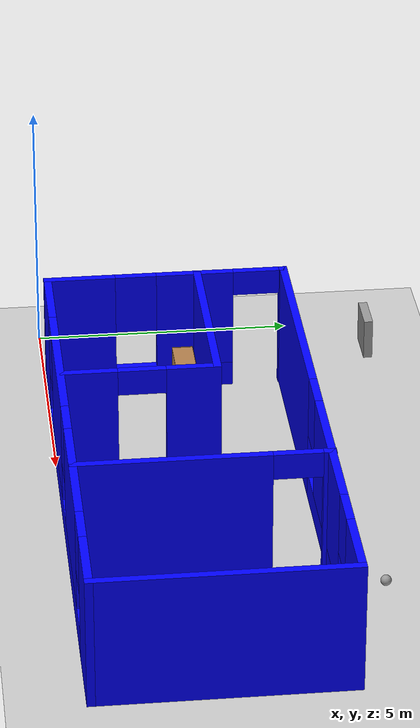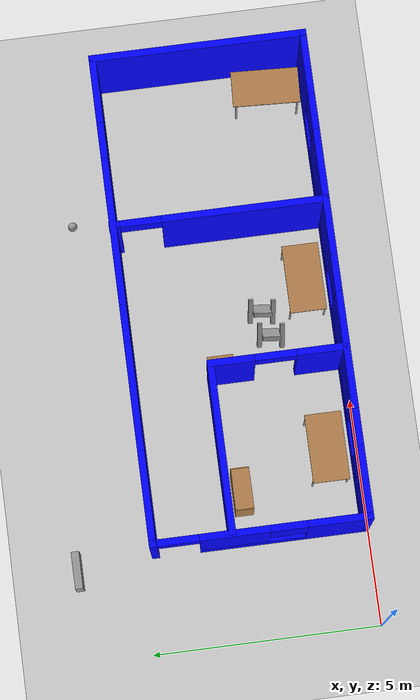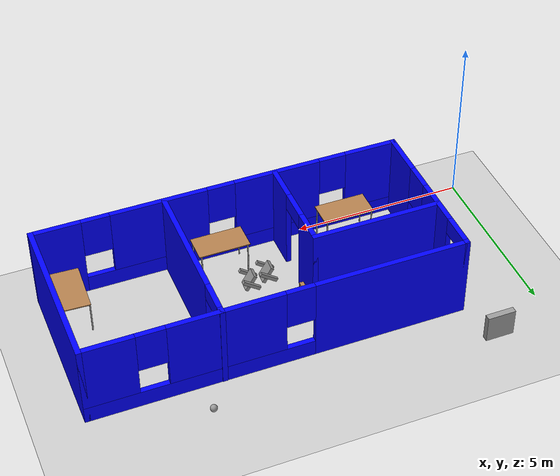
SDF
<sdf version="1.6">
 <world name="default">
  <plugin name="hello" filename="libhello.so"/>
  <light name="sun" type="directional">
   <pose>0 0 10 0 -0 0</pose>
   <diffuse>0.8 0.8 0.8 1</diffuse>
   <specular>0.2 0.2 0.2 1</specular>
   <attenuation>
    <range>1000</range>
    <constant>0.9</constant>
    <linear>0.01</linear>
    <quadratic>0.001</quadratic>
   </attenuation>
   <direction>-0.5 0.1 -0.9</direction>
  </light>
  <model name="ground_plane">
   <static>1</static>
   <link name="link">
    <collision name="collision">
     <geometry><plane><normal>0 0 1</normal><size>100 100</size></plane></geometry>
     <surface>
      <contact><collide_bitmask>65535</collide_bitmask></contact>
      <friction><ode><mu>100</mu><mu2>50</mu2></ode></friction>
     </surface>
    </collision>
    <visual name="visual">
     <cast_shadows>0</cast_shadows>
     <geometry><plane><normal>0 0 1</normal><size>100 100</size></plane></geometry>
     <material>
      <script><uri>file://media/materials/scripts/gazebo.material</uri><name>Gazebo/Grey</name></script>
     </material>
    </visual>
   </link>
  </model>
  <gravity>0 0 -9.8</gravity>
  <magnetic_field>6e-06 2.3e-05 -4.2e-05</magnetic_field>
  <atmosphere type="adiabatic"/>
  <physics name="default_physics" default="0" type="ode">
   <max_step_size>0.001</max_step_size>
   <real_time_factor>1</real_time_factor>
   <real_time_update_rate>1000</real_time_update_rate>
  </physics>
  <scene><ambient>0.4 0.4 0.4 1</ambient><background>0.7 0.7 0.7 1</background><shadows>1</shadows></scene>
  <spherical_coordinates>
   <surface_model>EARTH_WGS84</surface_model>
   <latitude_deg>0</latitude_deg>
   <longitude_deg>0</longitude_deg>
   <elevation>0</elevation>
   <heading_deg>0</heading_deg>
  </spherical_coordinates>
  <model name="building">
   <pose>7.4627 2.38493 0 0 -0 0</pose>
   <link name="Wall_10">
    <collision name="Wall_10_Collision">
     <geometry><box><size>4.75 0.15 2.5</size></box></geometry>
     <pose>0 0 1.25 0 -0 0</pose>
    </collision>
    <visual name="Wall_10_Visual">
     <pose>0 0 1.25 0 -0 0</pose>
     <geometry><box><size>4.75 0.15 2.5</size></box></geometry>
     <material>
      <script><uri>file://media/materials/scripts/gazebo.material</uri><name>Gazebo/Grey</name></script>
      <ambient>0 0 1 1</ambient>
     </material>
     <meta><layer>0</layer></meta>
    </visual>
    <pose>5.3 -0.005 0 0 0 -1.5708</pose>
   </link>
   <link name="Wall_11">
    <pose>0 -2.305 0 0 -0 3.14159</pose>
    <visual name="Wall_11_Visual_0">
     <pose>-4.6525 0 1.25 0 -0 0</pose>
     <geometry><box><size>1.445 0.15 2.5</size></box></geometry>
     <material>
      <script><uri>file://media/materials/scripts/gazebo.material</uri><name>Gazebo/Grey</name></script>
      <ambient>0 0 1 1</ambient>
     </material>
     <meta><layer>0</layer></meta>
    </visual>
    <collision name="Wall_11_Collision_0">
     <geometry><box><size>1.445 0.15 2.5</size></box></geometry>
     <pose>-4.6525 0 1.25 0 -0 0</pose>
    </collision>
    <visual name="Wall_11_Visual_1">
     <pose>0.7225 0 0.25 0 -0 0</pose>
     <geometry><box><size>9.305 0.15 0.5</size></box></geometry>
     <material>
      <script><uri>file://media/materials/scripts/gazebo.material</uri><name>Gazebo/Grey</name></script>
      <ambient>0 0 1 1</ambient>
     </material>
     <meta><layer>0</layer></meta>
    </visual>
    <collision name="Wall_11_Collision_1">
     <geometry><box><size>9.305 0.15 0.5</size></box></geometry>
     <pose>0.7225 0 0.25 0 -0 0</pose>
    </collision>
    <visual name="Wall_11_Visual_2">
     <pose>-1.735 0 1.5 0 -0 0</pose>
     <geometry><box><size>2.79 0.15 2</size></box></geometry>
     <material>
      <script><uri>file://media/materials/scripts/gazebo.material</uri><name>Gazebo/Grey</name></script>
      <ambient>0 0 1 1</ambient>
     </material>
     <meta><layer>0</layer></meta>
    </visual>
    <collision name="Wall_11_Collision_2">
     <geometry><box><size>2.79 0.15 2</size></box></geometry>
     <pose>-1.735 0 1.5 0 -0 0</pose>
    </collision>
    <visual name="Wall_11_Visual_3">
     <pose>1.73 0 1.5 0 -0 0</pose>
     <geometry><box><size>2.54 0.15 2</size></box></geometry>
     <material>
      <script><uri>file://media/materials/scripts/gazebo.material</uri><name>Gazebo/Grey</name></script>
      <ambient>0 0 1 1</ambient>
     </material>
     <meta><layer>0</layer></meta>
    </visual>
    <collision name="Wall_11_Collision_3">
     <geometry><box><size>2.54 0.15 2</size></box></geometry>
     <pose>1.73 0 1.5 0 -0 0</pose>
    </collision>
    <visual name="Wall_11_Visual_4">
     <pose>4.5875 0 1.5 0 -0 0</pose>
     <geometry><box><size>1.575 0.15 2</size></box></geometry>
     <material>
      <script><uri>file://media/materials/scripts/gazebo.material</uri><name>Gazebo/Grey</name></script>
      <ambient>0 0 1 1</ambient>
     </material>
     <meta><layer>0</layer></meta>
    </visual>
    <collision name="Wall_11_Collision_4">
     <geometry><box><size>1.575 0.15 2</size></box></geometry>
     <pose>4.5875 0 1.5 0 -0 0</pose>
    </collision>
    <visual name="Wall_11_Visual_5">
     <pose>-3.53 0 1.9 0 -0 0</pose>
     <geometry><box><size>0.8 0.15 1.2</size></box></geometry>
     <material>
      <script><uri>file://media/materials/scripts/gazebo.material</uri><name>Gazebo/Grey</name></script>
      <ambient>0 0 1 1</ambient>
     </material>
     <meta><layer>0</layer></meta>
    </visual>
    <collision name="Wall_11_Collision_5">
     <geometry><box><size>0.8 0.15 1.2</size></box></geometry>
     <pose>-3.53 0 1.9 0 -0 0</pose>
    </collision>
    <visual name="Wall_11_Visual_6">
     <pose>0.06 0 1.9 0 -0 0</pose>
     <geometry><box><size>0.8 0.15 1.2</size></box></geometry>
     <material>
      <script><uri>file://media/materials/scripts/gazebo.material</uri><name>Gazebo/Grey</name></script>
      <ambient>0 0 1 1</ambient>
     </material>
     <meta><layer>0</layer></meta>
    </visual>
    <collision name="Wall_11_Collision_6">
     <geometry><box><size>0.8 0.15 1.2</size></box></geometry>
     <pose>0.06 0 1.9 0 -0 0</pose>
    </collision>
    <visual name="Wall_11_Visual_7">
     <pose>3.4 0 1.9 0 -0 0</pose>
     <geometry><box><size>0.8 0.15 1.2</size></box></geometry>
     <material>
      <script><uri>file://media/materials/scripts/gazebo.material</uri><name>Gazebo/Grey</name></script>
      <ambient>0 0 1 1</ambient>
     </material>
     <meta><layer>0</layer></meta>
    </visual>
    <collision name="Wall_11_Collision_7">
     <geometry><box><size>0.8 0.15 1.2</size></box></geometry>
     <pose>3.4 0 1.9 0 -0 0</pose>
    </collision>
   </link>
   <link name="Wall_12">
    <pose>-5.3 -0.005 0 0 -0 1.5708</pose>
    <visual name="Wall_12_Visual_0">
     <pose>-1.6825 0 1.25 0 -0 0</pose>
     <geometry><box><size>1.385 0.15 2.5</size></box></geometry>
     <material>
      <script><uri>file://media/materials/scripts/gazebo.material</uri><name>Gazebo/Grey</name></script>
      <ambient>0 0 1 1</ambient>
     </material>
     <meta><layer>0</layer></meta>
    </visual>
    <collision name="Wall_12_Collision_0">
     <geometry><box><size>1.385 0.15 2.5</size></box></geometry>
     <pose>-1.6825 0 1.25 0 -0 0</pose>
    </collision>
    <visual name="Wall_12_Visual_1">
     <pose>2.2925 0 1.25 0 -0 0</pose>
     <geometry><box><size>0.165 0.15 2.5</size></box></geometry>
     <material>
      <script><uri>file://media/materials/scripts/gazebo.material</uri><name>Gazebo/Grey</name></script>
      <ambient>0 0 1 1</ambient>
     </material>
     <meta><layer>0</layer></meta>
    </visual>
    <collision name="Wall_12_Collision_1">
     <geometry><box><size>0.165 0.15 2.5</size></box></geometry>
     <pose>2.2925 0 1.25 0 -0 0</pose>
    </collision>
    <visual name="Wall_12_Visual_2">
     <pose>0.16 0 0.25 0 -0 0</pose>
     <geometry><box><size>2.3 0.15 0.5</size></box></geometry>
     <material>
      <script><uri>file://media/materials/scripts/gazebo.material</uri><name>Gazebo/Grey</name></script>
      <ambient>0 0 1 1</ambient>
     </material>
     <meta><layer>0</layer></meta>
    </visual>
    <collision name="Wall_12_Collision_2">
     <geometry><box><size>2.3 0.15 0.5</size></box></geometry>
     <pose>0.16 0 0.25 0 -0 0</pose>
    </collision>
    <visual name="Wall_12_Visual_3">
     <pose>0.56 0 1.5 0 -0 0</pose>
     <geometry><box><size>1.5 0.15 2</size></box></geometry>
     <material>
      <script><uri>file://media/materials/scripts/gazebo.material</uri><name>Gazebo/Grey</name></script>
      <ambient>0 0 1 1</ambient>
     </material>
     <meta><layer>0</layer></meta>
    </visual>
    <collision name="Wall_12_Collision_3">
     <geometry><box><size>1.5 0.15 2</size></box></geometry>
     <pose>0.56 0 1.5 0 -0 0</pose>
    </collision>
    <visual name="Wall_12_Visual_4">
     <pose>-0.59 0 1.9 0 -0 0</pose>
     <geometry><box><size>0.8 0.15 1.2</size></box></geometry>
     <material>
      <script><uri>file://media/materials/scripts/gazebo.material</uri><name>Gazebo/Grey</name></script>
      <ambient>0 0 1 1</ambient>
     </material>
     <meta><layer>0</layer></meta>
    </visual>
    <collision name="Wall_12_Collision_4">
     <geometry><box><size>0.8 0.15 1.2</size></box></geometry>
     <pose>-0.59 0 1.9 0 -0 0</pose>
    </collision>
    <visual name="Wall_12_Visual_5">
     <pose>1.76 0 2.25 0 -0 0</pose>
     <geometry><box><size>0.9 0.15 0.5</size></box></geometry>
     <material>
      <script><uri>file://media/materials/scripts/gazebo.material</uri><name>Gazebo/Grey</name></script>
      <ambient>0 0 1 1</ambient>
     </material>
     <meta><layer>0</layer></meta>
    </visual>
    <collision name="Wall_12_Collision_5">
     <geometry><box><size>0.9 0.15 0.5</size></box></geometry>
     <pose>1.76 0 2.25 0 -0 0</pose>
    </collision>
   </link>
   <link name="Wall_16">
    <collision name="Wall_16_Collision">
     <geometry><box><size>3.75 0.15 2.5</size></box></geometry>
     <pose>0 0 1.25 0 -0 0</pose>
    </collision>
    <visual name="Wall_16_Visual">
     <pose>0 0 1.25 0 -0 0</pose>
     <geometry><box><size>3.75 0.15 2.5</size></box></geometry>
     <material>
      <script><uri>file://media/materials/scripts/gazebo.material</uri><name>Gazebo/Grey</name></script>
      <ambient>0 0 1 1</ambient>
     </material>
     <meta><layer>0</layer></meta>
    </visual>
    <pose>-3.46 0.605 0 0 -0 0</pose>
   </link>
   <link name="Wall_17">
    <pose>-1.66 -0.82 0 0 0 -1.5708</pose>
    <visual name="Wall_17_Visual_0">
     <pose>-0.9875 0 1.25 0 -0 0</pose>
     <geometry><box><size>1.025 0.15 2.5</size></box></geometry>
     <material>
      <script><uri>file://media/materials/scripts/gazebo.material</uri><name>Gazebo/Grey</name></script>
      <ambient>0 0 1 1</ambient>
     </material>
     <meta><layer>0</layer></meta>
    </visual>
    <collision name="Wall_17_Collision_0">
     <geometry><box><size>1.025 0.15 2.5</size></box></geometry>
     <pose>-0.9875 0 1.25 0 -0 0</pose>
    </collision>
    <visual name="Wall_17_Visual_1">
     <pose>0.9625 0 1.25 0 -0 0</pose>
     <geometry><box><size>1.075 0.15 2.5</size></box></geometry>
     <material>
      <script><uri>file://media/materials/scripts/gazebo.material</uri><name>Gazebo/Grey</name></script>
      <ambient>0 0 1 1</ambient>
     </material>
     <meta><layer>0</layer></meta>
    </visual>
    <collision name="Wall_17_Collision_1">
     <geometry><box><size>1.075 0.15 2.5</size></box></geometry>
     <pose>0.9625 0 1.25 0 -0 0</pose>
    </collision>
    <visual name="Wall_17_Visual_2">
     <pose>-0.025 0 2.25 0 -0 0</pose>
     <geometry><box><size>0.9 0.15 0.5</size></box></geometry>
     <material>
      <script><uri>file://media/materials/scripts/gazebo.material</uri><name>Gazebo/Grey</name></script>
      <ambient>0 0 1 1</ambient>
     </material>
     <meta><layer>0</layer></meta>
    </visual>
    <collision name="Wall_17_Collision_2">
     <geometry><box><size>0.9 0.15 0.5</size></box></geometry>
     <pose>-0.025 0 2.25 0 -0 0</pose>
    </collision>
   </link>
   <link name="Wall_19">
    <pose>1.58 0.005 0 0 0 -1.5708</pose>
    <visual name="Wall_19_Visual_0">
     <pose>-2.2575 0 1.25 0 -0 0</pose>
     <geometry><box><size>0.235 0.15 2.5</size></box></geometry>
     <material>
      <script><uri>file://media/materials/scripts/gazebo.material</uri><name>Gazebo/Grey</name></script>
      <ambient>0 0 1 1</ambient>
     </material>
     <meta><layer>0</layer></meta>
    </visual>
    <collision name="Wall_19_Collision_0">
     <geometry><box><size>0.235 0.15 2.5</size></box></geometry>
     <pose>-2.2575 0 1.25 0 -0 0</pose>
    </collision>
    <visual name="Wall_19_Visual_1">
     <pose>0.5675 0 1.25 0 -0 0</pose>
     <geometry><box><size>3.615 0.15 2.5</size></box></geometry>
     <material>
      <script><uri>file://media/materials/scripts/gazebo.material</uri><name>Gazebo/Grey</name></script>
      <ambient>0 0 1 1</ambient>
     </material>
     <meta><layer>0</layer></meta>
    </visual>
    <collision name="Wall_19_Collision_1">
     <geometry><box><size>3.615 0.15 2.5</size></box></geometry>
     <pose>0.5675 0 1.25 0 -0 0</pose>
    </collision>
    <visual name="Wall_19_Visual_2">
     <pose>-1.69 0 2.25 0 -0 0</pose>
     <geometry><box><size>0.9 0.15 0.5</size></box></geometry>
     <material>
      <script><uri>file://media/materials/scripts/gazebo.material</uri><name>Gazebo/Grey</name></script>
      <ambient>0 0 1 1</ambient>
     </material>
     <meta><layer>0</layer></meta>
    </visual>
    <collision name="Wall_19_Collision_2">
     <geometry><box><size>0.9 0.15 0.5</size></box></geometry>
     <pose>-1.69 0 2.25 0 -0 0</pose>
    </collision>
   </link>
   <link name="Wall_9">
    <pose>0 2.295 0 0 -0 0</pose>
    <visual name="Wall_9_Visual_0">
     <pose>-3.1675 0 1.25 0 -0 0</pose>
     <geometry><box><size>4.415 0.15 2.5</size></box></geometry>
     <material>
      <script><uri>file://media/materials/scripts/gazebo.material</uri><name>Gazebo/Grey</name></script>
      <ambient>0 0 1 1</ambient>
     </material>
     <meta><layer>0</layer></meta>
    </visual>
    <collision name="Wall_9_Collision_0">
     <geometry><box><size>4.415 0.15 2.5</size></box></geometry>
     <pose>-3.1675 0 1.25 0 -0 0</pose>
    </collision>
    <visual name="Wall_9_Visual_1">
     <pose>2.2075 0 0.25 0 -0 0</pose>
     <geometry><box><size>6.335 0.15 0.5</size></box></geometry>
     <material>
      <script><uri>file://media/materials/scripts/gazebo.material</uri><name>Gazebo/Grey</name></script>
      <ambient>0 0 1 1</ambient>
     </material>
     <meta><layer>0</layer></meta>
    </visual>
    <collision name="Wall_9_Collision_1">
     <geometry><box><size>6.335 0.15 0.5</size></box></geometry>
     <pose>2.2075 0 0.25 0 -0 0</pose>
    </collision>
    <visual name="Wall_9_Visual_2">
     <pose>1.45 0 1.5 0 -0 0</pose>
     <geometry><box><size>3.22 0.15 2</size></box></geometry>
     <material>
      <script><uri>file://media/materials/scripts/gazebo.material</uri><name>Gazebo/Grey</name></script>
      <ambient>0 0 1 1</ambient>
     </material>
     <meta><layer>0</layer></meta>
    </visual>
    <collision name="Wall_9_Collision_2">
     <geometry><box><size>3.22 0.15 2</size></box></geometry>
     <pose>1.45 0 1.5 0 -0 0</pose>
    </collision>
    <visual name="Wall_9_Visual_3">
     <pose>4.6175 0 1.5 0 -0 0</pose>
     <geometry><box><size>1.515 0.15 2</size></box></geometry>
     <material>
      <script><uri>file://media/materials/scripts/gazebo.material</uri><name>Gazebo/Grey</name></script>
      <ambient>0 0 1 1</ambient>
     </material>
     <meta><layer>0</layer></meta>
    </visual>
    <collision name="Wall_9_Collision_3">
     <geometry><box><size>1.515 0.15 2</size></box></geometry>
     <pose>4.6175 0 1.5 0 -0 0</pose>
    </collision>
    <visual name="Wall_9_Visual_4">
     <pose>-0.56 0 1.9 0 -0 0</pose>
     <geometry><box><size>0.8 0.15 1.2</size></box></geometry>
     <material>
      <script><uri>file://media/materials/scripts/gazebo.material</uri><name>Gazebo/Grey</name></script>
      <ambient>0 0 1 1</ambient>
     </material>
     <meta><layer>0</layer></meta>
    </visual>
    <collision name="Wall_9_Collision_4">
     <geometry><box><size>0.8 0.15 1.2</size></box></geometry>
     <pose>-0.56 0 1.9 0 -0 0</pose>
    </collision>
    <visual name="Wall_9_Visual_5">
     <pose>3.46 0 1.9 0 -0 0</pose>
     <geometry><box><size>0.8 0.15 1.2</size></box></geometry>
     <material>
      <script><uri>file://media/materials/scripts/gazebo.material</uri><name>Gazebo/Grey</name></script>
      <ambient>0 0 1 1</ambient>
     </material>
     <meta><layer>0</layer></meta>
    </visual>
    <collision name="Wall_9_Collision_5">
     <geometry><box><size>0.8 0.15 1.2</size></box></geometry>
     <pose>3.46 0 1.9 0 -0 0</pose>
    </collision>
   </link>
   <link name="Window_6">
    <collision name="Window_6_Collision">
     <geometry><box><size>0.8 0.17 0.8</size></box></geometry>
     <pose>0 0 0.4 0 -0 0</pose>
    </collision>
    <visual name="Window_6_Visual">
     <pose>0 0 0.4 0 -0 0</pose>
     <geometry><box><size>0.8 0.17 0.8</size></box></geometry>
     <material>
      <script><uri>file://media/materials/scripts/gazebo.material</uri><name>Gazebo/Grey</name></script>
     </material>
    </visual>
    <pose>-5.53041 3.979 0.5 0 -0 0</pose>
   </link>
   <static>1</static>
  </model>
  <model name="table">
   <static>1</static>
   <link name="link">
    <collision name="surface">
     <pose>0 0 1 0 -0 0</pose>
     <geometry><box><size>1.5 0.8 0.03</size></box></geometry>
     <surface><friction><ode><mu>0.6</mu><mu2>0.6</mu2></ode></friction></surface>
    </collision>
    <visual name="visual1">
     <pose>0 0 1 0 -0 0</pose>
     <geometry><box><size>1.5 0.8 0.03</size></box></geometry>
     <material>
      <script><uri>file://media/materials/scripts/gazebo.material</uri><name>Gazebo/Wood</name></script>
     </material>
    </visual>
    <collision name="front_left_leg">
     <pose>0.68 0.38 0.5 0 -0 0</pose>
     <geometry><cylinder><radius>0.02</radius><length>1</length></cylinder></geometry>
    </collision>
    <visual name="front_left_leg">
     <pose>0.68 0.38 0.5 0 -0 0</pose>
     <geometry><cylinder><radius>0.02</radius><length>1</length></cylinder></geometry>
     <material>
      <script><uri>file://media/materials/scripts/gazebo.material</uri><name>Gazebo/Grey</name></script>
     </material>
    </visual>
    <collision name="front_right_leg">
     <pose>0.68 -0.38 0.5 0 -0 0</pose>
     <geometry><cylinder><radius>0.02</radius><length>1</length></cylinder></geometry>
    </collision>
    <visual name="front_right_leg">
     <pose>0.68 -0.38 0.5 0 -0 0</pose>
     <geometry><cylinder><radius>0.02</radius><length>1</length></cylinder></geometry>
     <material>
      <script><uri>file://media/materials/scripts/gazebo.material</uri><name>Gazebo/Grey</name></script>
     </material>
    </visual>
    <collision name="back_right_leg">
     <pose>-0.68 -0.38 0.5 0 -0 0</pose>
     <geometry><cylinder><radius>0.02</radius><length>1</length></cylinder></geometry>
    </collision>
    <visual name="back_right_leg">
     <pose>-0.68 -0.38 0.5 0 -0 0</pose>
     <geometry><cylinder><radius>0.02</radius><length>1</length></cylinder></geometry>
     <material>
      <script><uri>file://media/materials/scripts/gazebo.material</uri><name>Gazebo/Grey</name></script>
     </material>
    </visual>
    <collision name="back_left_leg">
     <pose>-0.68 0.38 0.5 0 -0 0</pose>
     <geometry><cylinder><radius>0.02</radius><length>1</length></cylinder></geometry>
    </collision>
    <visual name="back_left_leg">
     <pose>-0.68 0.38 0.5 0 -0 0</pose>
     <geometry><cylinder><radius>0.02</radius><length>1</length></cylinder></geometry>
     <material>
      <script><uri>file://media/materials/scripts/gazebo.material</uri><name>Gazebo/Grey</name></script>
     </material>
    </visual>
   </link>
   <pose>12.0766 0.961138 0.002066 0 -0 1.52414</pose>
  </model>
  <model name="wooden_case">
   <link name="base">
    <pose>0 0 0.024 0 -0 0</pose>
    <inertial>
     <pose>-0.022184 0 0.171592 0 -0 0</pose>
     <mass>3.96264</mass>
     <inertia>
      <ixx>0.213536</ixx>
      <ixy>0</ixy>
      <ixz>0.000779377</ixz>
      <iyy>0.0708943</iyy>
      <iyz>0</iyz>
      <izz>0.154604</izz>
     </inertia>
    </inertial>
    <collision name="collision_back">
     <pose>-0.053975 0 0.1778 0 -0 0</pose>
     <geometry><box><size>0.01905 0.5461 0.3175</size></box></geometry>
     <surface>
      <contact>
       <poissons_ratio>0.347</poissons_ratio>
       <elastic_modulus>8.8e+09</elastic_modulus>
       <ode><kp>100000</kp><kd>100</kd><max_vel>100</max_vel><min_depth>0.001</min_depth></ode>
      </contact>
      <friction>
       <torsional>
        <coefficient>1</coefficient>
        <use_patch_radius>0</use_patch_radius>
        <surface_radius>0.01</surface_radius>
       </torsional>
      </friction>
     </surface>
    </collision>
    <visual name="visual_back">
     <pose>-0.053975 0 0.1778 0 -0 0</pose>
     <geometry><box><size>0.01905 0.5461 0.3175</size></box></geometry>
     <material>
      <script><uri>file://media/materials/scripts/gazebo.material</uri><name>Gazebo/Wood</name></script>
     </material>
    </visual>
    <collision name="collision_bottom">
     <pose>0 0 0.009525 0 -0 0</pose>
     <geometry><box><size>0.127 0.5842 0.01905</size></box></geometry>
     <surface>
      <contact>
       <poissons_ratio>0.347</poissons_ratio>
       <elastic_modulus>8.8e+09</elastic_modulus>
       <ode><kp>100000</kp><kd>100</kd><max_vel>100</max_vel><min_depth>0.001</min_depth></ode>
      </contact>
      <friction>
       <torsional>
        <coefficient>1</coefficient>
        <use_patch_radius>0</use_patch_radius>
        <surface_radius>0.01</surface_radius>
       </torsional>
      </friction>
     </surface>
    </collision>
    <visual name="visual_bottom">
     <pose>0 0 0.009525 0 -0 0</pose>
     <geometry><box><size>0.127 0.5842 0.01905</size></box></geometry>
     <material>
      <script><uri>file://media/materials/scripts/gazebo.material</uri><name>Gazebo/Wood</name></script>
     </material>
    </visual>
    <collision name="collision_top">
     <pose>0 0 0.346075 0 -0 0</pose>
     <geometry><box><size>0.127 0.5842 0.01905</size></box></geometry>
     <surface>
      <contact>
       <poissons_ratio>0.347</poissons_ratio>
       <elastic_modulus>8.8e+09</elastic_modulus>
       <ode><kp>100000</kp><kd>100</kd><max_vel>100</max_vel><min_depth>0.001</min_depth></ode>
      </contact>
      <friction>
       <torsional>
        <coefficient>1</coefficient>
        <use_patch_radius>0</use_patch_radius>
        <surface_radius>0.01</surface_radius>
       </torsional>
      </friction>
     </surface>
    </collision>
    <visual name="visual_top">
     <pose>0 0 0.346075 0 -0 0</pose>
     <geometry><box><size>0.127 0.5842 0.01905</size></box></geometry>
     <material>
      <script><uri>file://media/materials/scripts/gazebo.material</uri><name>Gazebo/Wood</name></script>
     </material>
    </visual>
    <collision name="collision_left">
     <pose>0 -0.282575 0.1778 0 -0 0</pose>
     <geometry><box><size>0.127 0.01905 0.3175</size></box></geometry>
     <surface>
      <contact>
       <poissons_ratio>0.347</poissons_ratio>
       <elastic_modulus>8.8e+09</elastic_modulus>
       <ode><kp>100000</kp><kd>100</kd><max_vel>100</max_vel><min_depth>0.001</min_depth></ode>
      </contact>
      <friction>
       <torsional>
        <coefficient>1</coefficient>
        <use_patch_radius>0</use_patch_radius>
        <surface_radius>0.01</surface_radius>
       </torsional>
      </friction>
     </surface>
    </collision>
    <visual name="visual_left">
     <pose>0 -0.282575 0.1778 0 -0 0</pose>
     <geometry><box><size>0.127 0.01905 0.3175</size></box></geometry>
     <material>
      <script><uri>file://media/materials/scripts/gazebo.material</uri><name>Gazebo/Wood</name></script>
     </material>
    </visual>
    <collision name="collision_right">
     <pose>0 0.282575 0.1778 0 -0 0</pose>
     <geometry><box><size>0.127 0.01905 0.3175</size></box></geometry>
     <surface>
      <contact>
       <poissons_ratio>0.347</poissons_ratio>
       <elastic_modulus>8.8e+09</elastic_modulus>
       <ode><kp>100000</kp><kd>100</kd><max_vel>100</max_vel><min_depth>0.001</min_depth></ode>
      </contact>
      <friction>
       <torsional>
        <coefficient>1</coefficient>
        <use_patch_radius>0</use_patch_radius>
        <surface_radius>0.01</surface_radius>
       </torsional>
      </friction>
     </surface>
    </collision>
    <visual name="visual_right">
     <pose>0 0.282575 0.1778 0 -0 0</pose>
     <geometry><box><size>0.127 0.01905 0.3175</size></box></geometry>
     <material>
      <script><uri>file://media/materials/scripts/gazebo.material</uri><name>Gazebo/Wood</name></script>
     </material>
    </visual>
    <collision name="collision_block_left">
     <pose>0.0095 -0.2151 -0.012 0 -0 0</pose>
     <geometry><box><size>0.108 0.05 0.024</size></box></geometry>
     <surface>
      <contact>
       <poissons_ratio>0.347</poissons_ratio>
       <elastic_modulus>8.8e+09</elastic_modulus>
       <ode><kp>100000</kp><kd>100</kd><max_vel>100</max_vel><min_depth>0.001</min_depth></ode>
      </contact>
      <friction>
       <torsional>
        <coefficient>1</coefficient>
        <use_patch_radius>0</use_patch_radius>
        <surface_radius>0.01</surface_radius>
       </torsional>
      </friction>
     </surface>
    </collision>
    <visual name="visual_block_left">
     <pose>0.0095 -0.2151 -0.012 0 -0 0</pose>
     <geometry><box><size>0.108 0.05 0.024</size></box></geometry>
     <material>
      <script><uri>file://media/materials/scripts/gazebo.material</uri><name>Gazebo/Wood</name></script>
     </material>
    </visual>
    <collision name="collision_block_right">
     <pose>0.0095 0.2151 -0.012 0 -0 0</pose>
     <geometry><box><size>0.108 0.05 0.024</size></box></geometry>
     <surface>
      <contact>
       <poissons_ratio>0.347</poissons_ratio>
       <elastic_modulus>8.8e+09</elastic_modulus>
       <ode><kp>100000</kp><kd>100</kd><max_vel>100</max_vel><min_depth>0.001</min_depth></ode>
      </contact>
      <friction>
       <torsional>
        <coefficient>1</coefficient>
        <use_patch_radius>0</use_patch_radius>
        <surface_radius>0.01</surface_radius>
       </torsional>
      </friction>
     </surface>
    </collision>
    <visual name="visual_block_right">
     <pose>0.0095 0.2151 -0.012 0 -0 0</pose>
     <geometry><box><size>0.108 0.05 0.024</size></box></geometry>
     <material>
      <script><uri>file://media/materials/scripts/gazebo.material</uri><name>Gazebo/Wood</name></script>
     </material>
    </visual>
   </link>
   <link name="lid">
    <pose>0.243775 0 0.009525 0 -0 0</pose>
    <inertial>
     <mass>1.97874</mass>
     <inertia>
      <ixx>0.0563367</ixx>
      <ixy>0</ixy>
      <ixz>0</ixz>
      <iyy>0.020911</iyy>
      <iyz>0</iyz>
      <izz>0.0771281</izz>
     </inertia>
    </inertial>
    <collision name="collision">
     <geometry><box><size>0.3556 0.5842 0.01905</size></box></geometry>
     <surface>
      <contact>
       <poissons_ratio>0.347</poissons_ratio>
       <elastic_modulus>8.8e+09</elastic_modulus>
       <ode><kp>100000</kp><kd>100</kd><max_vel>100</max_vel><min_depth>0.001</min_depth></ode>
      </contact>
      <friction>
       <torsional>
        <coefficient>1</coefficient>
        <use_patch_radius>0</use_patch_radius>
        <surface_radius>0.01</surface_radius>
       </torsional>
      </friction>
     </surface>
    </collision>
    <visual name="visual">
     <geometry><box><size>0.3556 0.5842 0.01905</size></box></geometry>
     <material>
      <script><uri>file://media/materials/scripts/gazebo.material</uri><name>Gazebo/Wood</name></script>
     </material>
    </visual>
    <visual name="tee_nut_1">
     <pose>0.122 -0.216 0 0 -0 0</pose>
     <geometry><cylinder><radius>0.00635</radius><length>0.0192405</length></cylinder></geometry>
     <material>
      <script><uri>file://media/materials/scripts/gazebo.material</uri><name>Gazebo/Grey</name></script>
     </material>
    </visual>
    <visual name="tee_nut_2">
     <pose>0.122 -0.088 0 0 -0 0</pose>
     <geometry><cylinder><radius>0.00635</radius><length>0.0192405</length></cylinder></geometry>
     <material>
      <script><uri>file://media/materials/scripts/gazebo.material</uri><name>Gazebo/Grey</name></script>
     </material>
    </visual>
    <visual name="tee_nut_3">
     <pose>0.122 0.088 0 0 -0 0</pose>
     <geometry><cylinder><radius>0.00635</radius><length>0.0192405</length></cylinder></geometry>
     <material>
      <script><uri>file://media/materials/scripts/gazebo.material</uri><name>Gazebo/Grey</name></script>
     </material>
    </visual>
    <visual name="tee_nut_4">
     <pose>0.122 0.216 0 0 -0 0</pose>
     <geometry><cylinder><radius>0.00635</radius><length>0.0192405</length></cylinder></geometry>
     <material>
      <script><uri>file://media/materials/scripts/gazebo.material</uri><name>Gazebo/Grey</name></script>
     </material>
    </visual>
   </link>
   <joint name="lid_hinge" type="revolute">
    <pose>-0.1778 0 0.01905 0 -0 0</pose>
    <parent>base</parent>
    <child>lid</child>
    <axis>
     <xyz>0 1 0</xyz>
     <limit><upper>0.523599</upper><lower>-1.5708</lower></limit>
     <use_parent_model_frame>0</use_parent_model_frame>
     <dynamics><spring_reference>0</spring_reference><spring_stiffness>0</spring_stiffness></dynamics>
    </axis>
   </joint>
   <pose>5.95085 2.71833 -0.001057 0 -0.000426 0</pose>
  </model>
  <model name="bookshelf">
   <static>1</static>
   <link name="link">
    <inertial><mass>1</mass></inertial>
    <collision name="back">
     <pose>0 0.005 0.6 0 -0 0</pose>
     <geometry><box><size>0.9 0.01 1.2</size></box></geometry>
    </collision>
    <visual name="visual1">
     <pose>0 0.005 0.6 0 -0 0</pose>
     <geometry><box><size>0.9 0.01 1.2</size></box></geometry>
     <material>
      <script><uri>file://media/materials/scripts/gazebo.material</uri><name>Gazebo/Wood</name></script>
     </material>
    </visual>
    <collision name="left_side">
     <pose>0.45 -0.195 0.6 0 -0 0</pose>
     <geometry><box><size>0.02 0.4 1.2</size></box></geometry>
    </collision>
    <visual name="visual2">
     <pose>0.45 -0.195 0.6 0 -0 0</pose>
     <geometry><box><size>0.02 0.4 1.2</size></box></geometry>
     <material>
      <script><uri>file://media/materials/scripts/gazebo.material</uri><name>Gazebo/Wood</name></script>
     </material>
    </visual>
    <collision name="right_side">
     <pose>-0.45 -0.195 0.6 0 -0 0</pose>
     <geometry><box><size>0.02 0.4 1.2</size></box></geometry>
    </collision>
    <visual name="visual3">
     <pose>-0.45 -0.195 0.6 0 -0 0</pose>
     <geometry><box><size>0.02 0.4 1.2</size></box></geometry>
     <material>
      <script><uri>file://media/materials/scripts/gazebo.material</uri><name>Gazebo/Wood</name></script>
     </material>
    </visual>
    <collision name="bottom">
     <pose>0 -0.195 0.03 0 -0 0</pose>
     <geometry><box><size>0.88 0.4 0.06</size></box></geometry>
    </collision>
    <visual name="visual4">
     <pose>0 -0.195 0.03 0 -0 0</pose>
     <geometry><box><size>0.88 0.4 0.06</size></box></geometry>
     <material>
      <script><uri>file://media/materials/scripts/gazebo.material</uri><name>Gazebo/Wood</name></script>
     </material>
    </visual>
    <collision name="top">
     <pose>0 -0.195 1.19 0 -0 0</pose>
     <geometry><box><size>0.88 0.4 0.02</size></box></geometry>
    </collision>
    <visual name="visual5">
     <pose>0 -0.195 1.19 0 -0 0</pose>
     <geometry><box><size>0.88 0.4 0.02</size></box></geometry>
     <material>
      <script><uri>file://media/materials/scripts/gazebo.material</uri><name>Gazebo/Wood</name></script>
     </material>
    </visual>
    <collision name="low_shelf">
     <pose>0 -0.195 0.43 0 -0 0</pose>
     <geometry><box><size>0.88 0.4 0.02</size></box></geometry>
    </collision>
    <visual name="visual6">
     <pose>0 -0.195 0.43 0 -0 0</pose>
     <geometry><box><size>0.88 0.4 0.02</size></box></geometry>
     <material>
      <script><uri>file://media/materials/scripts/gazebo.material</uri><name>Gazebo/Wood</name></script>
     </material>
    </visual>
    <collision name="high_shelf">
     <pose>0 -0.195 0.8 0 -0 0</pose>
     <geometry><box><size>0.88 0.4 0.02</size></box></geometry>
    </collision>
    <visual name="visual7">
     <pose>0 -0.195 0.8 0 -0 0</pose>
     <geometry><box><size>0.88 0.4 0.02</size></box></geometry>
     <material>
      <script><uri>file://media/materials/scripts/gazebo.material</uri><name>Gazebo/Wood</name></script>
     </material>
    </visual>
   </link>
   <pose>3.2253 2.8317 0 0 -0 0</pose>
  </model>
  <model name="table_0">
   <static>1</static>
   <link name="link">
    <collision name="surface">
     <pose>0 0 1 0 -0 0</pose>
     <geometry><box><size>1.5 0.8 0.03</size></box></geometry>
     <surface><friction><ode><mu>0.6</mu><mu2>0.6</mu2></ode></friction></surface>
    </collision>
    <visual name="visual1">
     <pose>0 0 1 0 -0 0</pose>
     <geometry><box><size>1.5 0.8 0.03</size></box></geometry>
     <material>
      <script><uri>file://media/materials/scripts/gazebo.material</uri><name>Gazebo/Wood</name></script>
     </material>
    </visual>
    <collision name="front_left_leg">
     <pose>0.68 0.38 0.5 0 -0 0</pose>
     <geometry><cylinder><radius>0.02</radius><length>1</length></cylinder></geometry>
    </collision>
    <visual name="front_left_leg">
     <pose>0.68 0.38 0.5 0 -0 0</pose>
     <geometry><cylinder><radius>0.02</radius><length>1</length></cylinder></geometry>
     <material>
      <script><uri>file://media/materials/scripts/gazebo.material</uri><name>Gazebo/Grey</name></script>
     </material>
    </visual>
    <collision name="front_right_leg">
     <pose>0.68 -0.38 0.5 0 -0 0</pose>
     <geometry><cylinder><radius>0.02</radius><length>1</length></cylinder></geometry>
    </collision>
    <visual name="front_right_leg">
     <pose>0.68 -0.38 0.5 0 -0 0</pose>
     <geometry><cylinder><radius>0.02</radius><length>1</length></cylinder></geometry>
     <material>
      <script><uri>file://media/materials/scripts/gazebo.material</uri><name>Gazebo/Grey</name></script>
     </material>
    </visual>
    <collision name="back_right_leg">
     <pose>-0.68 -0.38 0.5 0 -0 0</pose>
     <geometry><cylinder><radius>0.02</radius><length>1</length></cylinder></geometry>
    </collision>
    <visual name="back_right_leg">
     <pose>-0.68 -0.38 0.5 0 -0 0</pose>
     <geometry><cylinder><radius>0.02</radius><length>1</length></cylinder></geometry>
     <material>
      <script><uri>file://media/materials/scripts/gazebo.material</uri><name>Gazebo/Grey</name></script>
     </material>
    </visual>
    <collision name="back_left_leg">
     <pose>-0.68 0.38 0.5 0 -0 0</pose>
     <geometry><cylinder><radius>0.02</radius><length>1</length></cylinder></geometry>
    </collision>
    <visual name="back_left_leg">
     <pose>-0.68 0.38 0.5 0 -0 0</pose>
     <geometry><cylinder><radius>0.02</radius><length>1</length></cylinder></geometry>
     <material>
      <script><uri>file://media/materials/scripts/gazebo.material</uri><name>Gazebo/Grey</name></script>
     </material>
    </visual>
   </link>
   <pose>7.68297 0.689355 0 0 -0 0</pose>
  </model>
  <model name="table_1">
   <static>1</static>
   <link name="link">
    <collision name="surface">
     <pose>0 0 1 0 -0 0</pose>
     <geometry><box><size>1.5 0.8 0.03</size></box></geometry>
     <surface><friction><ode><mu>0.6</mu><mu2>0.6</mu2></ode></friction></surface>
    </collision>
    <visual name="visual1">
     <pose>0 0 1 0 -0 0</pose>
     <geometry><box><size>1.5 0.8 0.03</size></box></geometry>
     <material>
      <script><uri>file://media/materials/scripts/gazebo.material</uri><name>Gazebo/Wood</name></script>
     </material>
    </visual>
    <collision name="front_left_leg">
     <pose>0.68 0.38 0.5 0 -0 0</pose>
     <geometry><cylinder><radius>0.02</radius><length>1</length></cylinder></geometry>
    </collision>
    <visual name="front_left_leg">
     <pose>0.68 0.38 0.5 0 -0 0</pose>
     <geometry><cylinder><radius>0.02</radius><length>1</length></cylinder></geometry>
     <material>
      <script><uri>file://media/materials/scripts/gazebo.material</uri><name>Gazebo/Grey</name></script>
     </material>
    </visual>
    <collision name="front_right_leg">
     <pose>0.68 -0.38 0.5 0 -0 0</pose>
     <geometry><cylinder><radius>0.02</radius><length>1</length></cylinder></geometry>
    </collision>
    <visual name="front_right_leg">
     <pose>0.68 -0.38 0.5 0 -0 0</pose>
     <geometry><cylinder><radius>0.02</radius><length>1</length></cylinder></geometry>
     <material>
      <script><uri>file://media/materials/scripts/gazebo.material</uri><name>Gazebo/Grey</name></script>
     </material>
    </visual>
    <collision name="back_right_leg">
     <pose>-0.68 -0.38 0.5 0 -0 0</pose>
     <geometry><cylinder><radius>0.02</radius><length>1</length></cylinder></geometry>
    </collision>
    <visual name="back_right_leg">
     <pose>-0.68 -0.38 0.5 0 -0 0</pose>
     <geometry><cylinder><radius>0.02</radius><length>1</length></cylinder></geometry>
     <material>
      <script><uri>file://media/materials/scripts/gazebo.material</uri><name>Gazebo/Grey</name></script>
     </material>
    </visual>
    <collision name="back_left_leg">
     <pose>-0.68 0.38 0.5 0 -0 0</pose>
     <geometry><cylinder><radius>0.02</radius><length>1</length></cylinder></geometry>
    </collision>
    <visual name="back_left_leg">
     <pose>-0.68 0.38 0.5 0 -0 0</pose>
     <geometry><cylinder><radius>0.02</radius><length>1</length></cylinder></geometry>
     <material>
      <script><uri>file://media/materials/scripts/gazebo.material</uri><name>Gazebo/Grey</name></script>
     </material>
    </visual>
   </link>
   <pose>3.91165 0.694633 0 0 -0 0</pose>
  </model>
  <model name="robot">
   <link name="link_0">
    <pose>0.01834 -0.001591 0 0 -0 0</pose>
    <inertial>
     <mass>1</mass>
     <inertia>
      <ixx>0.166667</ixx>
      <ixy>0</ixy>
      <ixz>0</ixz>
      <iyy>0.166667</iyy>
      <iyz>0</iyz>
      <izz>0.166667</izz>
     </inertia>
    </inertial>
    <visual name="visual">
     <geometry><box><size>0.5 0.4 0.1</size></box></geometry>
     <material>
      <lighting>1</lighting>
      <script><uri>file://media/materials/scripts/gazebo.material</uri><name>Gazebo/Grey</name></script>
      <shader type="pixel"><normal_map>__default__</normal_map></shader>
      <ambient>0.3 0.3 0.3 1</ambient>
      <diffuse>0.7 0.7 0.7 1</diffuse>
      <specular>0.01 0.01 0.01 1</specular>
      <emissive>0 0 0 1</emissive>
     </material>
    </visual>
    <collision name="collision">
     <geometry><box><size>0.5 0.4 0.1</size></box></geometry>
     <surface>
      <friction>
       <ode><mu>1</mu><mu2>1</mu2><fdir1>0 0 0</fdir1><slip1>0</slip1><slip2>0</slip2></ode>
       <torsional>
        <coefficient>1</coefficient>
        <patch_radius>0</patch_radius>
        <surface_radius>0</surface_radius>
        <use_patch_radius>1</use_patch_radius>
        <ode><slip>0</slip></ode>
       </torsional>
      </friction>
      <bounce><restitution_coefficient>0</restitution_coefficient><threshold>1e+06</threshold></bounce>
      <contact>
       <collide_without_contact>0</collide_without_contact>
       <collide_without_contact_bitmask>1</collide_without_contact_bitmask>
       <collide_bitmask>1</collide_bitmask>
       <ode>
        <soft_cfm>0</soft_cfm>
        <soft_erp>0.2</soft_erp>
        <kp>1e+13</kp>
        <kd>1</kd>
        <max_vel>0.01</max_vel>
        <min_depth>0</min_depth>
       </ode>
       <bullet>
        <split_impulse>1</split_impulse>
        <split_impulse_penetration_threshold>-0.01</split_impulse_penetration_threshold>
        <soft_cfm>0</soft_cfm>
        <soft_erp>0.2</soft_erp>
        <kp>1e+13</kp>
        <kd>1</kd>
       </bullet>
      </contact>
     </surface>
    </collision>
   </link>
   <link name="link_4">
    <pose>-0.03668 -0.246818 0 0 -0 0</pose>
    <inertial>
     <mass>1</mass>
     <inertia>
      <ixx>0.166667</ixx>
      <ixy>0</ixy>
      <ixz>0</ixz>
      <iyy>0.166667</iyy>
      <iyz>0</iyz>
      <izz>0.166667</izz>
     </inertia>
    </inertial>
    <visual name="visual">
     <geometry><box><size>0.1 0.1 0.55</size></box></geometry>
     <material>
      <lighting>1</lighting>
      <script><uri>file://media/materials/scripts/gazebo.material</uri><name>Gazebo/Grey</name></script>
      <shader type="pixel"><normal_map>__default__</normal_map></shader>
      <ambient>0.3 0.3 0.3 1</ambient>
      <diffuse>0.7 0.7 0.7 1</diffuse>
      <specular>0.01 0.01 0.01 1</specular>
      <emissive>0 0 0 1</emissive>
     </material>
    </visual>
    <collision name="collision">
     <geometry><box><size>0.1 0.1 0.55</size></box></geometry>
     <surface>
      <friction>
       <ode><mu>1</mu><mu2>1</mu2><fdir1>0 0 0</fdir1><slip1>0</slip1><slip2>0</slip2></ode>
       <torsional>
        <coefficient>1</coefficient>
        <patch_radius>0</patch_radius>
        <surface_radius>0</surface_radius>
        <use_patch_radius>1</use_patch_radius>
        <ode><slip>0</slip></ode>
       </torsional>
      </friction>
      <bounce><restitution_coefficient>0</restitution_coefficient><threshold>1e+06</threshold></bounce>
      <contact>
       <collide_without_contact>0</collide_without_contact>
       <collide_without_contact_bitmask>1</collide_without_contact_bitmask>
       <collide_bitmask>1</collide_bitmask>
       <ode>
        <soft_cfm>0</soft_cfm>
        <soft_erp>0.2</soft_erp>
        <kp>1e+13</kp>
        <kd>1</kd>
        <max_vel>0.01</max_vel>
        <min_depth>0</min_depth>
       </ode>
       <bullet>
        <split_impulse>1</split_impulse>
        <split_impulse_penetration_threshold>-0.01</split_impulse_penetration_threshold>
        <soft_cfm>0</soft_cfm>
        <soft_erp>0.2</soft_erp>
        <kp>1e+13</kp>
        <kd>1</kd>
       </bullet>
      </contact>
     </surface>
    </collision>
   </link>
   <link name="link_4_clone">
    <pose>0.01834 0.248409 0 0 -0 0</pose>
    <inertial>
     <mass>1</mass>
     <inertia>
      <ixx>0.166667</ixx>
      <ixy>0</ixy>
      <ixz>0</ixz>
      <iyy>0.166667</iyy>
      <iyz>0</iyz>
      <izz>0.166667</izz>
     </inertia>
    </inertial>
    <visual name="visual">
     <geometry><box><size>0.1 0.1 0.55</size></box></geometry>
     <material>
      <lighting>1</lighting>
      <script><uri>file://media/materials/scripts/gazebo.material</uri><name>Gazebo/Grey</name></script>
      <shader type="pixel"><normal_map>__default__</normal_map></shader>
      <ambient>0.3 0.3 0.3 1</ambient>
      <diffuse>0.7 0.7 0.7 1</diffuse>
      <specular>0.01 0.01 0.01 1</specular>
      <emissive>0 0 0 1</emissive>
     </material>
    </visual>
    <collision name="collision">
     <geometry><box><size>0.1 0.1 0.55</size></box></geometry>
     <surface>
      <friction>
       <ode><mu>1</mu><mu2>1</mu2><fdir1>0 0 0</fdir1><slip1>0</slip1><slip2>0</slip2></ode>
       <torsional>
        <coefficient>1</coefficient>
        <patch_radius>0</patch_radius>
        <surface_radius>0</surface_radius>
        <use_patch_radius>1</use_patch_radius>
        <ode><slip>0</slip></ode>
       </torsional>
      </friction>
      <bounce><restitution_coefficient>0</restitution_coefficient><threshold>1e+06</threshold></bounce>
      <contact>
       <collide_without_contact>0</collide_without_contact>
       <collide_without_contact_bitmask>1</collide_without_contact_bitmask>
       <collide_bitmask>1</collide_bitmask>
       <ode>
        <soft_cfm>0</soft_cfm>
        <soft_erp>0.2</soft_erp>
        <kp>1e+13</kp>
        <kd>1</kd>
        <max_vel>0.01</max_vel>
        <min_depth>0</min_depth>
       </ode>
       <bullet>
        <split_impulse>1</split_impulse>
        <split_impulse_penetration_threshold>-0.01</split_impulse_penetration_threshold>
        <soft_cfm>0</soft_cfm>
        <soft_erp>0.2</soft_erp>
        <kp>1e+13</kp>
        <kd>1</kd>
       </bullet>
      </contact>
     </surface>
    </collision>
   </link>
   <joint name="link_0_JOINT_0" type="revolute">
    <parent>link_0</parent>
    <child>link_4</child>
    <axis>
     <xyz>0 1 0</xyz>
     <use_parent_model_frame>0</use_parent_model_frame>
     <limit>
      <lower>-1.79769e+308</lower>
      <upper>1.79769e+308</upper>
      <effort>-1</effort>
      <velocity>-1</velocity>
     </limit>
     <dynamics>
      <spring_reference>0</spring_reference>
      <spring_stiffness>0</spring_stiffness>
      <damping>0</damping>
     </dynamics>
    </axis>
    <physics>
     <ode><limit><cfm>0</cfm><erp>0.2</erp></limit><suspension><cfm>0</cfm><erp>0.2</erp></suspension></ode>
    </physics>
   </joint>
   <joint name="link_0_JOINT_2" type="revolute">
    <parent>link_0</parent>
    <child>link_4_clone</child>
    <axis>
     <xyz>0 1 0</xyz>
     <use_parent_model_frame>0</use_parent_model_frame>
     <limit>
      <lower>-1.79769e+308</lower>
      <upper>1.79769e+308</upper>
      <effort>-1</effort>
      <velocity>-1</velocity>
     </limit>
     <dynamics>
      <spring_reference>0</spring_reference>
      <spring_stiffness>0</spring_stiffness>
      <damping>0</damping>
     </dynamics>
    </axis>
    <physics>
     <ode><limit><cfm>0</cfm><erp>0.2</erp></limit><suspension><cfm>0</cfm><erp>0.2</erp></suspension></ode>
    </physics>
   </joint>
   <static>0</static>
   <pose>7.19816 1.67861 0.270697 0.172018 0.995074 0.060099</pose>
  </model>
  <model name="robot_0">
   <link name="link_0">
    <pose>0.01834 -0.001591 0 0 -0 0</pose>
    <inertial>
     <mass>1</mass>
     <inertia>
      <ixx>0.166667</ixx>
      <ixy>0</ixy>
      <ixz>0</ixz>
      <iyy>0.166667</iyy>
      <iyz>0</iyz>
      <izz>0.166667</izz>
     </inertia>
    </inertial>
    <visual name="visual">
     <geometry><box><size>0.5 0.4 0.1</size></box></geometry>
     <material>
      <lighting>1</lighting>
      <script><uri>file://media/materials/scripts/gazebo.material</uri><name>Gazebo/Grey</name></script>
      <shader type="pixel"><normal_map>__default__</normal_map></shader>
      <ambient>0.3 0.3 0.3 1</ambient>
      <diffuse>0.7 0.7 0.7 1</diffuse>
      <specular>0.01 0.01 0.01 1</specular>
      <emissive>0 0 0 1</emissive>
     </material>
    </visual>
    <collision name="collision">
     <geometry><box><size>0.5 0.4 0.1</size></box></geometry>
     <surface>
      <friction>
       <ode><mu>1</mu><mu2>1</mu2><fdir1>0 0 0</fdir1><slip1>0</slip1><slip2>0</slip2></ode>
       <torsional>
        <coefficient>1</coefficient>
        <patch_radius>0</patch_radius>
        <surface_radius>0</surface_radius>
        <use_patch_radius>1</use_patch_radius>
        <ode><slip>0</slip></ode>
       </torsional>
      </friction>
      <bounce><restitution_coefficient>0</restitution_coefficient><threshold>1e+06</threshold></bounce>
      <contact>
       <collide_without_contact>0</collide_without_contact>
       <collide_without_contact_bitmask>1</collide_without_contact_bitmask>
       <collide_bitmask>1</collide_bitmask>
       <ode>
        <soft_cfm>0</soft_cfm>
        <soft_erp>0.2</soft_erp>
        <kp>1e+13</kp>
        <kd>1</kd>
        <max_vel>0.01</max_vel>
        <min_depth>0</min_depth>
       </ode>
       <bullet>
        <split_impulse>1</split_impulse>
        <split_impulse_penetration_threshold>-0.01</split_impulse_penetration_threshold>
        <soft_cfm>0</soft_cfm>
        <soft_erp>0.2</soft_erp>
        <kp>1e+13</kp>
        <kd>1</kd>
       </bullet>
      </contact>
     </surface>
    </collision>
   </link>
   <link name="link_4">
    <pose>-0.03668 -0.246818 0 0 -0 0</pose>
    <inertial>
     <mass>1</mass>
     <inertia>
      <ixx>0.166667</ixx>
      <ixy>0</ixy>
      <ixz>0</ixz>
      <iyy>0.166667</iyy>
      <iyz>0</iyz>
      <izz>0.166667</izz>
     </inertia>
    </inertial>
    <visual name="visual">
     <geometry><box><size>0.1 0.1 0.55</size></box></geometry>
     <material>
      <lighting>1</lighting>
      <script><uri>file://media/materials/scripts/gazebo.material</uri><name>Gazebo/Grey</name></script>
      <shader type="pixel"><normal_map>__default__</normal_map></shader>
      <ambient>0.3 0.3 0.3 1</ambient>
      <diffuse>0.7 0.7 0.7 1</diffuse>
      <specular>0.01 0.01 0.01 1</specular>
      <emissive>0 0 0 1</emissive>
     </material>
    </visual>
    <collision name="collision">
     <geometry><box><size>0.1 0.1 0.55</size></box></geometry>
     <surface>
      <friction>
       <ode><mu>1</mu><mu2>1</mu2><fdir1>0 0 0</fdir1><slip1>0</slip1><slip2>0</slip2></ode>
       <torsional>
        <coefficient>1</coefficient>
        <patch_radius>0</patch_radius>
        <surface_radius>0</surface_radius>
        <use_patch_radius>1</use_patch_radius>
        <ode><slip>0</slip></ode>
       </torsional>
      </friction>
      <bounce><restitution_coefficient>0</restitution_coefficient><threshold>1e+06</threshold></bounce>
      <contact>
       <collide_without_contact>0</collide_without_contact>
       <collide_without_contact_bitmask>1</collide_without_contact_bitmask>
       <collide_bitmask>1</collide_bitmask>
       <ode>
        <soft_cfm>0</soft_cfm>
        <soft_erp>0.2</soft_erp>
        <kp>1e+13</kp>
        <kd>1</kd>
        <max_vel>0.01</max_vel>
        <min_depth>0</min_depth>
       </ode>
       <bullet>
        <split_impulse>1</split_impulse>
        <split_impulse_penetration_threshold>-0.01</split_impulse_penetration_threshold>
        <soft_cfm>0</soft_cfm>
        <soft_erp>0.2</soft_erp>
        <kp>1e+13</kp>
        <kd>1</kd>
       </bullet>
      </contact>
     </surface>
    </collision>
   </link>
   <link name="link_4_clone">
    <pose>0.01834 0.248409 0 0 -0 0</pose>
    <inertial>
     <mass>1</mass>
     <inertia>
      <ixx>0.166667</ixx>
      <ixy>0</ixy>
      <ixz>0</ixz>
      <iyy>0.166667</iyy>
      <iyz>0</iyz>
      <izz>0.166667</izz>
     </inertia>
    </inertial>
    <visual name="visual">
     <geometry><box><size>0.1 0.1 0.55</size></box></geometry>
     <material>
      <lighting>1</lighting>
      <script><uri>file://media/materials/scripts/gazebo.material</uri><name>Gazebo/Grey</name></script>
      <shader type="pixel"><normal_map>__default__</normal_map></shader>
      <ambient>0.3 0.3 0.3 1</ambient>
      <diffuse>0.7 0.7 0.7 1</diffuse>
      <specular>0.01 0.01 0.01 1</specular>
      <emissive>0 0 0 1</emissive>
     </material>
    </visual>
    <collision name="collision">
     <geometry><box><size>0.1 0.1 0.55</size></box></geometry>
     <surface>
      <friction>
       <ode><mu>1</mu><mu2>1</mu2><fdir1>0 0 0</fdir1><slip1>0</slip1><slip2>0</slip2></ode>
       <torsional>
        <coefficient>1</coefficient>
        <patch_radius>0</patch_radius>
        <surface_radius>0</surface_radius>
        <use_patch_radius>1</use_patch_radius>
        <ode><slip>0</slip></ode>
       </torsional>
      </friction>
      <bounce><restitution_coefficient>0</restitution_coefficient><threshold>1e+06</threshold></bounce>
      <contact>
       <collide_without_contact>0</collide_without_contact>
       <collide_without_contact_bitmask>1</collide_without_contact_bitmask>
       <collide_bitmask>1</collide_bitmask>
       <ode>
        <soft_cfm>0</soft_cfm>
        <soft_erp>0.2</soft_erp>
        <kp>1e+13</kp>
        <kd>1</kd>
        <max_vel>0.01</max_vel>
        <min_depth>0</min_depth>
       </ode>
       <bullet>
        <split_impulse>1</split_impulse>
        <split_impulse_penetration_threshold>-0.01</split_impulse_penetration_threshold>
        <soft_cfm>0</soft_cfm>
        <soft_erp>0.2</soft_erp>
        <kp>1e+13</kp>
        <kd>1</kd>
       </bullet>
      </contact>
     </surface>
    </collision>
   </link>
   <joint name="link_0_JOINT_0" type="revolute">
    <parent>link_0</parent>
    <child>link_4</child>
    <axis>
     <xyz>0 1 0</xyz>
     <use_parent_model_frame>0</use_parent_model_frame>
     <limit>
      <lower>-1.79769e+308</lower>
      <upper>1.79769e+308</upper>
      <effort>-1</effort>
      <velocity>-1</velocity>
     </limit>
     <dynamics>
      <spring_reference>0</spring_reference>
      <spring_stiffness>0</spring_stiffness>
      <damping>0</damping>
     </dynamics>
    </axis>
    <physics>
     <ode><limit><cfm>0</cfm><erp>0.2</erp></limit><suspension><cfm>0</cfm><erp>0.2</erp></suspension></ode>
    </physics>
   </joint>
   <joint name="link_0_JOINT_2" type="revolute">
    <parent>link_0</parent>
    <child>link_4_clone</child>
    <axis>
     <xyz>0 1 0</xyz>
     <use_parent_model_frame>0</use_parent_model_frame>
     <limit>
      <lower>-1.79769e+308</lower>
      <upper>1.79769e+308</upper>
      <effort>-1</effort>
      <velocity>-1</velocity>
     </limit>
     <dynamics>
      <spring_reference>0</spring_reference>
      <spring_stiffness>0</spring_stiffness>
      <damping>0</damping>
     </dynamics>
    </axis>
    <physics>
     <ode><limit><cfm>0</cfm><erp>0.2</erp></limit><suspension><cfm>0</cfm><erp>0.2</erp></suspension></ode>
    </physics>
   </joint>
   <static>0</static>
   <pose>6.6427 1.54831 0.270697 0.172022 0.995095 0.066612</pose>
  </model>
  <light name="user_spot_light_0" type="spot">
   <pose>6.86927 1.54781 1 0 -0 0</pose>
   <diffuse>0.5 0.5 0.5 1</diffuse>
   <specular>0.1 0.1 0.1 1</specular>
   <direction>0 0 -1</direction>
   <attenuation>
    <range>20</range>
    <constant>0.5</constant>
    <linear>0.01</linear>
    <quadratic>0.001</quadratic>
   </attenuation>
   <cast_shadows>0</cast_shadows>
   <spot><inner_angle>0.6</inner_angle><outer_angle>1</outer_angle><falloff>1</falloff></spot>
  </light>
  <model name="my_ball">
   <link name="link_0">
    <inertial>
     <mass>1</mass>
     <inertia><ixx>0.1</ixx><ixy>0</ixy><ixz>0</ixz><iyy>0.1</iyy><iyz>0</iyz><izz>0.1</izz></inertia>
    </inertial>
    <visual name="visual">
     <geometry><sphere><radius>0.1</radius></sphere></geometry>
     <material>
      <lighting>1</lighting>
      <script><uri>file://media/materials/scripts/gazebo.material</uri><name>Gazebo/Grey</name></script>
      <shader type="pixel"><normal_map>__default__</normal_map></shader>
      <ambient>1 1 1 1</ambient>
      <diffuse>1 1 1 1</diffuse>
      <specular>1 1 1 1</specular>
      <emissive>1 1 1 1</emissive>
     </material>
    </visual>
    <collision name="collision">
     <geometry><sphere><radius>0.1</radius></sphere></geometry>
     <surface>
      <friction>
       <ode><mu>1</mu><mu2>1</mu2><fdir1>0 0 0</fdir1><slip1>0</slip1><slip2>0</slip2></ode>
       <torsional>
        <coefficient>1</coefficient>
        <patch_radius>0</patch_radius>
        <surface_radius>0</surface_radius>
        <use_patch_radius>1</use_patch_radius>
        <ode><slip>0</slip></ode>
       </torsional>
      </friction>
      <bounce><restitution_coefficient>0</restitution_coefficient><threshold>1e+06</threshold></bounce>
      <contact>
       <collide_without_contact>0</collide_without_contact>
       <collide_without_contact_bitmask>1</collide_without_contact_bitmask>
       <collide_bitmask>1</collide_bitmask>
       <ode>
        <soft_cfm>0</soft_cfm>
        <soft_erp>0.2</soft_erp>
        <kp>1e+13</kp>
        <kd>1</kd>
        <max_vel>0.01</max_vel>
        <min_depth>0</min_depth>
       </ode>
       <bullet>
        <split_impulse>1</split_impulse>
        <split_impulse_penetration_threshold>-0.01</split_impulse_penetration_threshold>
        <soft_cfm>0</soft_cfm>
        <soft_erp>0.2</soft_erp>
        <kp>1e+13</kp>
        <kd>1</kd>
       </bullet>
      </contact>
     </surface>
    </collision>
   </link>
   <static>0</static>
   <pose>9.67184 5.61097 0.1 0 -0 0</pose>
  </model>
 </world>
</sdf>
